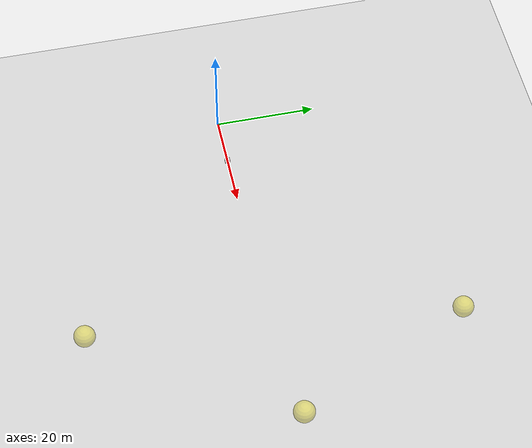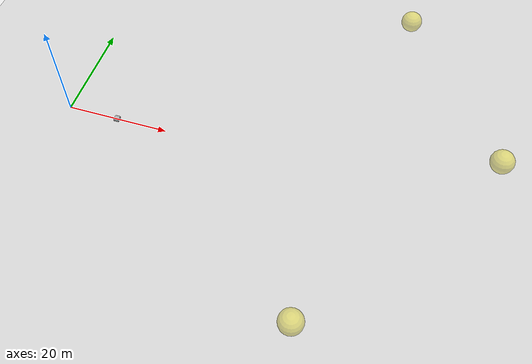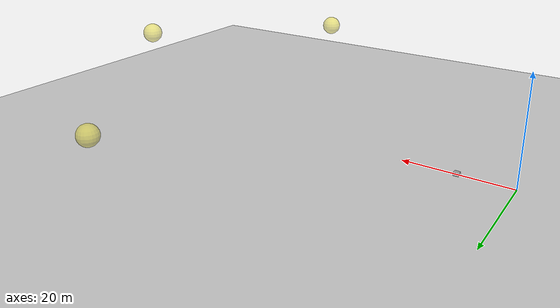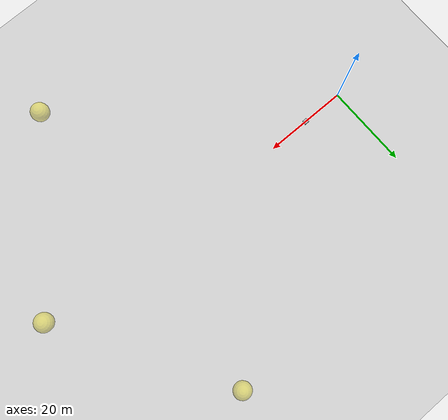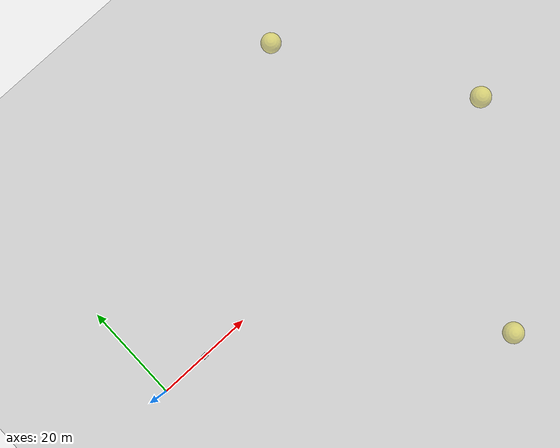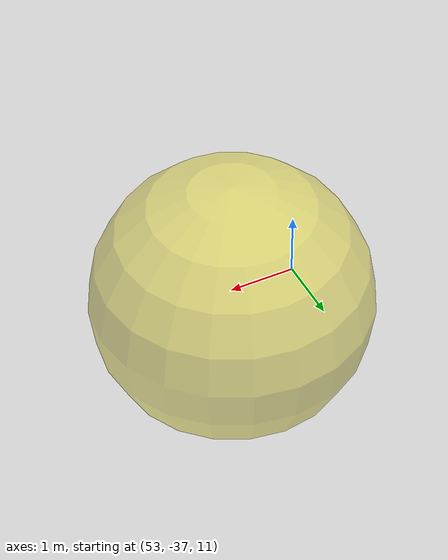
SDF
<sdf version="1.5">
 <world name="default">
  <include><uri>model://sun</uri></include>
  <include><uri>model://dronecourse_arena</uri><pose>50 0 0 0 0 0</pose></include>
  <include><uri>model://platform</uri></include>
  <include>
   <uri>model://waypoint</uri>
   <pose>60 35 8 0 0 0</pose>
   <plugin name="Waypoint0" filename="libgazebo_waypoint_plugin.so"/>
  </include>
  <include>
   <uri>model://waypoint</uri>
   <pose>80 0 15 0 0 0</pose>
   <plugin name="Waypoint1" filename="libgazebo_waypoint_plugin.so"/>
  </include>
  <include>
   <uri>model://waypoint</uri>
   <pose>55 -35 13 0 0 0</pose>
   <plugin name="Waypoint2" filename="libgazebo_waypoint_plugin.so"/>
  </include>
  <physics name="default_physics" default="0" type="ode">
   <gravity>0 0 -9.8066</gravity>
   <ode>
    <solver>
     <type>quick</type>
     <iters>10</iters>
     <sor>1.3</sor>
     <use_dynamic_moi_rescaling>0</use_dynamic_moi_rescaling>
    </solver>
    <constraints>
     <cfm>0</cfm>
     <erp>0.2</erp>
     <contact_max_correcting_vel>100</contact_max_correcting_vel>
     <contact_surface_layer>0.001</contact_surface_layer>
    </constraints>
   </ode>
   <max_step_size>0.002</max_step_size>
   <real_time_factor>1</real_time_factor>
   <real_time_update_rate>500</real_time_update_rate>
   <magnetic_field>6e-06 2.3e-05 -4.2e-05</magnetic_field>
  </physics>
 </world>
</sdf>

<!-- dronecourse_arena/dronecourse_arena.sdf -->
<sdf version="1.4">
<model name="floor_walls_1">
  <static>true</static>
    <link name="link">
      <collision name="collision">
        <geometry>
          <plane>
            <normal>0 0 1</normal>
            <size>250 150</size>
          </plane>
        </geometry>
        <surface>
          <contact>
             <collide_bitmask>0xffff</collide_bitmask>
          </contact>
          <friction>
            <ode>
              <mu>100</mu>
              <mu2>50</mu2>
            </ode>
          </friction>
        </surface>
      </collision>
      <visual name="visual">
        <cast_shadows>false</cast_shadows>
        <geometry>
          <plane>
            <normal>0 0 1</normal>
            <size>250 150 </size>
          </plane>
        </geometry>
        <material>
          <script>
            <uri>model://dronecourse_arena/materials/scripts</uri>
            <uri>model://dronecourse_arena/materials/textures</uri>
            <name>dronecourse/arena</name>
          </script>
        </material>
      </visual>
    </link>
  </model>
</sdf>

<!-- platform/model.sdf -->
<sdf version='1.5'>
	<model name="platform">
		<static>true</static>
		<pose>10 0 0 0 0 0</pose>
		<link name="box">
			<pose>0 0 0 0 0 0</pose>

			<collision name='collision'>
				<geometry>
					<box>
						<size>1 1 1</size>
					</box>
				</geometry>
			</collision>

			<visual name='visual'>
				<geometry>
					<mesh> <uri> model://platform/box.dae </uri></mesh>
				</geometry>
				<material>
					<script>
						<uri>model://platform/materials/dronecourse.material</uri>
						<name>dronecourse/platform</name>
					</script>
				</material>
			</visual>

			<sensor name='contact' type='contact'>
			  <contact>
				<collision>collision</collision>
			  </contact>
			</sensor>
		</link>
		<plugin name='Platform' filename='libgazebo_platform_plugin.so'>
			<robotNamespace/>
			<platformSubTopic>platform</platformSubTopic>
			<contactSubTopic>platform/box/contact</contactSubTopic>
		</plugin>
	</model>
</sdf>

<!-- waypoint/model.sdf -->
<sdf version='1.5'>
  <model name="waypoint">
    <static>true</static>
    <pose>0 0 0 0 0 0</pose>
    <link name="sphere">
      <pose>0 0 0 0 0 0</pose>
      <visual name='visual'>
        <transparency>0.5</transparency>
        <geometry>
          <sphere>
            <radius>2</radius>
          </sphere>
        </geometry>
        <material>
          <script>
            <name>Gazebo/Yellow</name>
            <uri>file://media/materials/scripts/gazebo.material</uri>
          </script>
        </material>
      </visual>
    </link>
  </model>
</sdf>
